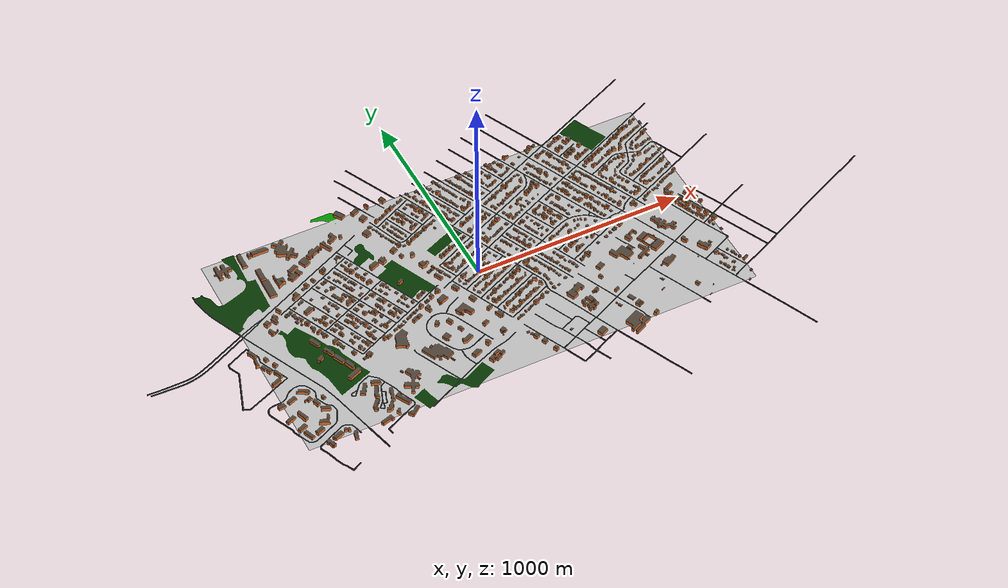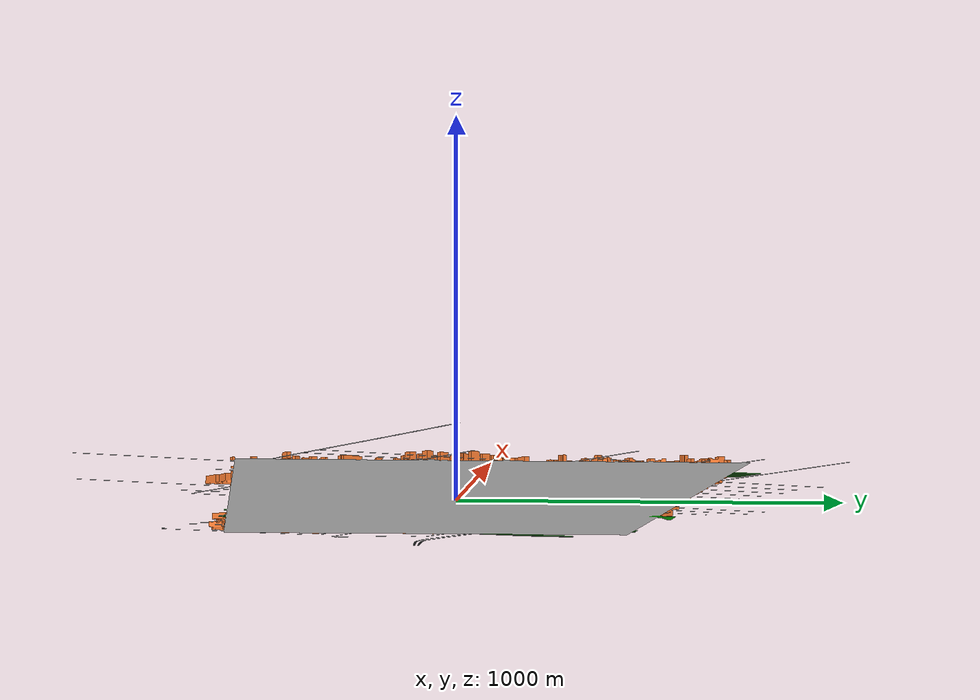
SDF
<?xml version="1.0" ?>
<sdf version="1.5">
  <model name="Daytona">
    <pose>0 0 0 0 0 0</pose>
    <static>true</static>
    <link name="city">
      <visual name="visual">
        <geometry>
          <mesh><uri>model://Daytona_1/Daytona1.dae</uri></mesh>
        </geometry>
        <pose>0 0 -3.5 0 0 0</pose>
      </visual>
      <collision name="collision">
        <geometry>
          <mesh><uri>model://Daytona_1/Daytona1.dae</uri></mesh>
        </geometry>
        <pose>0 0 -3.5 0 0 0</pose>
      </collision>
    </link>
  </model>
</sdf>
